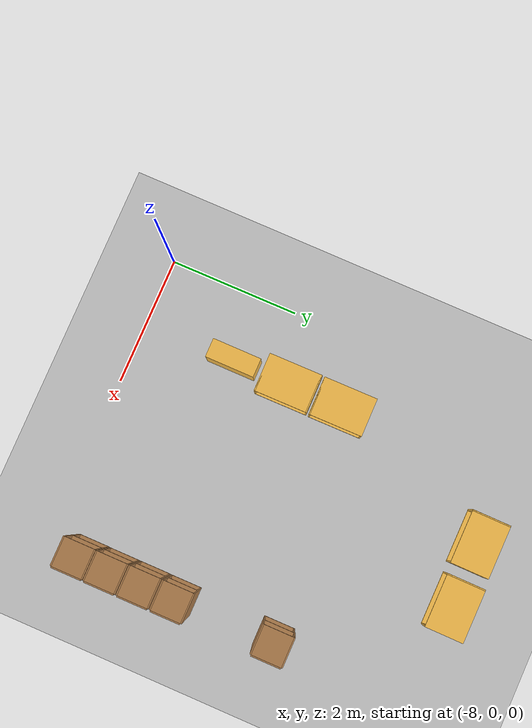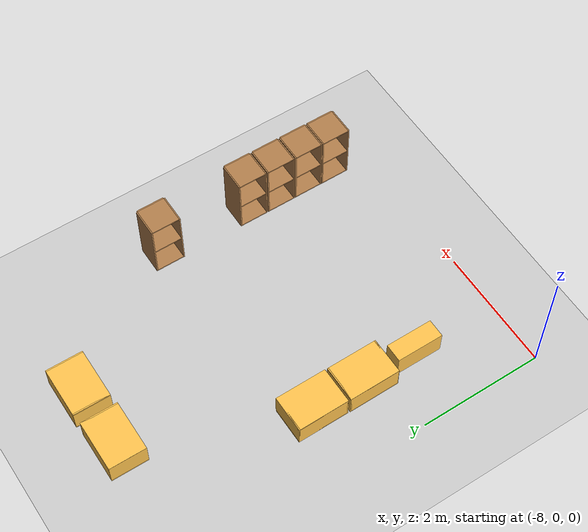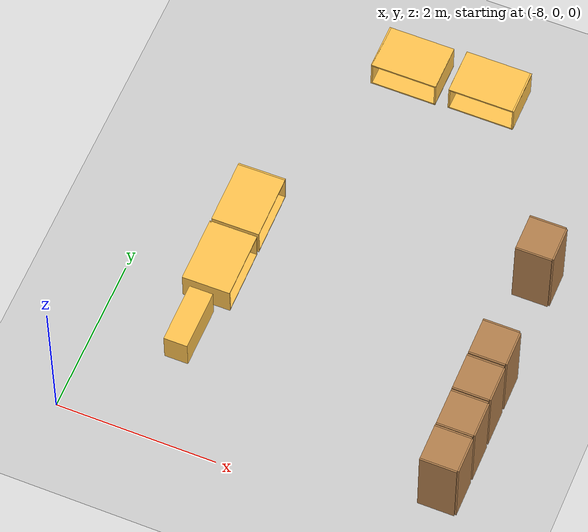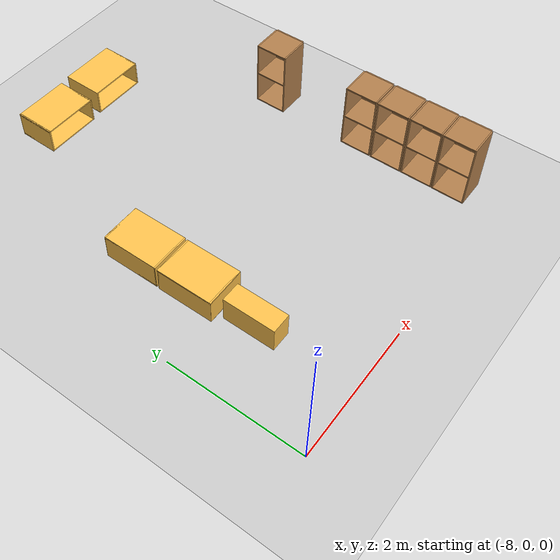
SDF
<sdf version="1.7">
 <world name="default">
  <model name="ground_plane">
   <pose>0 0 0 0 -0 1</pose>
   <static>1</static>
   <link name="link">
    <collision name="collision">
     <geometry><plane><normal>0 0 1</normal><size>100 100</size></plane></geometry>
     <surface>
      <contact><collide_bitmask>65535</collide_bitmask></contact>
      <friction><ode><mu>100</mu><mu2>50</mu2></ode></friction>
     </surface>
    </collision>
    <visual name="visual">
     <cast_shadows>0</cast_shadows>
     <geometry><plane><normal>0 0 1</normal><size>100 100</size></plane></geometry>
     <material>
      <script><uri>file://media/materials/scripts/gazebo.material</uri><name>Gazebo/Grey</name></script>
     </material>
    </visual>
   </link>
  </model>
  <model name="Box_15x30">
   <link name="Wall">
    <pose>0 0 0.1985 0 -0 0</pose>
    <inertial>
     <mass>5</mass>
     <inertia><ixx>0.3089</ixx><iyy>0.1022</iyy><izz>0.2797</izz><ixy>0</ixy><ixz>0</ixz><iyz>0</iyz></inertia>
    </inertial>
    <collision name="Wall_Collision"><geometry><box><size>0.296 0.764 0.397</size></box></geometry></collision>
    <visual name="Wall_Visual">
     <geometry><box><size>0.296 0.764 0.397</size></box></geometry>
     <material>
      <script><uri>file://media/materials/scripts/gazebo.material</uri><name>Gazebo/Grey</name></script>
      <ambient>1 0.764706 0.305882 1</ambient>
     </material>
    </visual>
   </link>
   <static>1</static>
   <pose>-6.95749 1.46432 0 0 -0 0</pose>
  </model>
  <model name="Fridge_Cabinet_33x15">
   <link name="Wall_17">
    <pose>0 0 0.01 0 -0 0</pose>
    <inertial>
     <mass>4.8627</mass>
     <inertia><ixx>0.146</ixx><iyy>0.4318</iyy><izz>0.2861</izz><ixy>0</ixy><ixz>0</ixz><iyz>0</iyz></inertia>
    </inertial>
    <collision name="Wall_17_Collision"><geometry><box><size>0.84 0.6 0.02</size></box></geometry></collision>
    <visual name="Wall_17_Visual">
     <geometry><box><size>0.84 0.6 0.02</size></box></geometry>
     <material>
      <script><uri>file://media/materials/scripts/gazebo.material</uri><name>Gazebo/Grey</name></script>
      <ambient>1 0.764706 0.305882 1</ambient>
     </material>
    </visual>
   </link>
   <joint name="17_21" type="fixed">
    <pose>0.42 0 0 0 -0 0</pose>
    <parent>Wall_21</parent>
    <child>Wall_17</child>
    <axis><xyz>1 0 0</xyz><limit><lower>-1e+16</lower><upper>1e+16</upper></limit></axis>
   </joint>
   <joint name="17_19" type="fixed">
    <pose>-0.42 0 0 0 -0 0</pose>
    <parent>Wall_19</parent>
    <child>Wall_17</child>
    <axis><xyz>1 0 0</xyz><limit><lower>-1e+16</lower><upper>1e+16</upper></limit></axis>
   </joint>
   <joint name="17_25" type="fixed">
    <pose>0 -0.3 0 0 -0 0</pose>
    <parent>Wall_25</parent>
    <child>Wall_17</child>
    <axis><xyz>0 1 0</xyz><limit><lower>-1e+16</lower><upper>1e+16</upper></limit></axis>
   </joint>
   <link name="Wall_19">
    <pose>-0.41 0 0.192 0 -0 0</pose>
    <inertial>
     <mass>2.223</mass>
     <inertia><ixx>0.0668</ixx><iyy>0.094</iyy><izz>0.0274</izz><ixy>0</ixy><ixz>0</ixz><iyz>0</iyz></inertia>
    </inertial>
    <collision name="Wall_19_Collision"><geometry><box><size>0.02 0.6 0.384</size></box></geometry></collision>
    <visual name="Wall_19_Visual">
     <geometry><box><size>0.02 0.6 0.384</size></box></geometry>
     <material>
      <script><uri>file://media/materials/scripts/gazebo.material</uri><name>Gazebo/Grey</name></script>
      <ambient>1 0.764706 0.305882 1</ambient>
     </material>
    </visual>
   </link>
   <link name="Wall_21">
    <pose>0.41 0 0.192 0 -0 0</pose>
    <inertial>
     <mass>2.223</mass>
     <inertia><ixx>0.0668</ixx><iyy>0.094</iyy><izz>0.0274</izz><ixy>0</ixy><ixz>0</ixz><iyz>0</iyz></inertia>
    </inertial>
    <collision name="Wall_21_Collision"><geometry><box><size>0.02 0.6 0.384</size></box></geometry></collision>
    <visual name="Wall_21_Visual">
     <geometry><box><size>0.02 0.6 0.384</size></box></geometry>
     <material>
      <script><uri>file://media/materials/scripts/gazebo.material</uri><name>Gazebo/Grey</name></script>
      <ambient>1 0.764706 0.305882 1</ambient>
     </material>
    </visual>
   </link>
   <link name="Wall_23">
    <pose>0 0 0.374 0 -0 0</pose>
    <inertial>
     <mass>4.8627</mass>
     <inertia><ixx>0.146</ixx><iyy>0.4318</iyy><izz>0.2861</izz><ixy>0</ixy><ixz>0</ixz><iyz>0</iyz></inertia>
    </inertial>
    <collision name="Wall_23_Collision"><geometry><box><size>0.84 0.6 0.02</size></box></geometry></collision>
    <visual name="Wall_23_Visual">
     <geometry><box><size>0.84 0.6 0.02</size></box></geometry>
     <material>
      <script><uri>file://media/materials/scripts/gazebo.material</uri><name>Gazebo/Grey</name></script>
      <ambient>1 0.764706 0.305882 1</ambient>
     </material>
    </visual>
   </link>
   <joint name="23_21" type="fixed">
    <pose>0.42 0 0 0 -0 0</pose>
    <parent>Wall_21</parent>
    <child>Wall_23</child>
    <axis><xyz>0 0 1</xyz><limit><lower>-1e+16</lower><upper>1e+16</upper></limit></axis>
   </joint>
   <joint name="23_19" type="fixed">
    <pose>-0.42 0 0 0 -0 0</pose>
    <parent>Wall_19</parent>
    <child>Wall_23</child>
    <axis><xyz>0 0 1</xyz><limit><lower>-1e+16</lower><upper>1e+16</upper></limit></axis>
   </joint>
   <joint name="23_25" type="fixed">
    <pose>0 -0.3 0 0 -0 0</pose>
    <parent>Wall_25</parent>
    <child>Wall_23</child>
    <axis><xyz>0 0 1</xyz><limit><lower>-1e+16</lower><upper>1e+16</upper></limit></axis>
   </joint>
   <link name="Wall_25">
    <pose>0 -0.29 0.19 0 -0 0</pose>
    <inertial>
     <mass>3.0651</mass>
     <inertia><ixx>0.037</ixx><iyy>0.1786</iyy><izz>0.2154</izz><ixy>0</ixy><ixz>0</ixz><iyz>0</iyz></inertia>
    </inertial>
    <collision name="Wall_25_Collision"><geometry><box><size>0.836 0.02 0.38</size></box></geometry></collision>
    <visual name="Wall_25_Visual">
     <geometry><box><size>0.836 0.02 0.38</size></box></geometry>
     <material>
      <script><uri>file://media/materials/scripts/gazebo.material</uri><name>Gazebo/Grey</name></script>
      <ambient>1 0.764706 0.305882 1</ambient>
     </material>
    </visual>
   </link>
   <joint name="25_21" type="fixed">
    <pose>0.42 0 0 0 -0 0</pose>
    <parent>Wall_21</parent>
    <child>Wall_25</child>
    <axis><xyz>0 1 0</xyz><limit><lower>-1e+16</lower><upper>1e+16</upper></limit></axis>
   </joint>
   <joint name="25_19" type="fixed">
    <pose>-0.42 0 0 0 -0 0</pose>
    <parent>Wall_19</parent>
    <child>Wall_25</child>
    <axis><xyz>0 1 0</xyz><limit><lower>-1e+16</lower><upper>1e+16</upper></limit></axis>
   </joint>
   <static>1</static>
   <pose>-6.9403 2.35275 0 0 0 -1.56459</pose>
  </model>
  <model name="Fridge_Cabinet_33x15_clone">
   <link name="Wall_17">
    <pose>0 0 0.01 0 -0 0</pose>
    <inertial>
     <mass>4.8627</mass>
     <inertia><ixx>0.146</ixx><iyy>0.4318</iyy><izz>0.2861</izz><ixy>0</ixy><ixz>0</ixz><iyz>0</iyz></inertia>
    </inertial>
    <collision name="Wall_17_Collision"><geometry><box><size>0.84 0.6 0.02</size></box></geometry></collision>
    <visual name="Wall_17_Visual">
     <geometry><box><size>0.84 0.6 0.02</size></box></geometry>
     <material>
      <script><uri>file://media/materials/scripts/gazebo.material</uri><name>Gazebo/Grey</name></script>
      <ambient>1 0.764706 0.305882 1</ambient>
     </material>
    </visual>
   </link>
   <joint name="17_21" type="fixed">
    <pose>0.42 0 0 0 -0 0</pose>
    <parent>Wall_21</parent>
    <child>Wall_17</child>
    <axis><xyz>1 0 0</xyz><limit><lower>-1e+16</lower><upper>1e+16</upper></limit></axis>
   </joint>
   <joint name="17_19" type="fixed">
    <pose>-0.42 0 0 0 -0 0</pose>
    <parent>Wall_19</parent>
    <child>Wall_17</child>
    <axis><xyz>1 0 0</xyz><limit><lower>-1e+16</lower><upper>1e+16</upper></limit></axis>
   </joint>
   <joint name="17_25" type="fixed">
    <pose>0 -0.3 0 0 -0 0</pose>
    <parent>Wall_25</parent>
    <child>Wall_17</child>
    <axis><xyz>0 1 0</xyz><limit><lower>-1e+16</lower><upper>1e+16</upper></limit></axis>
   </joint>
   <link name="Wall_19">
    <pose>-0.41 0 0.192 0 -0 0</pose>
    <inertial>
     <mass>2.223</mass>
     <inertia><ixx>0.0668</ixx><iyy>0.094</iyy><izz>0.0274</izz><ixy>0</ixy><ixz>0</ixz><iyz>0</iyz></inertia>
    </inertial>
    <collision name="Wall_19_Collision"><geometry><box><size>0.02 0.6 0.384</size></box></geometry></collision>
    <visual name="Wall_19_Visual">
     <geometry><box><size>0.02 0.6 0.384</size></box></geometry>
     <material>
      <script><uri>file://media/materials/scripts/gazebo.material</uri><name>Gazebo/Grey</name></script>
      <ambient>1 0.764706 0.305882 1</ambient>
     </material>
    </visual>
   </link>
   <link name="Wall_21">
    <pose>0.41 0 0.192 0 -0 0</pose>
    <inertial>
     <mass>2.223</mass>
     <inertia><ixx>0.0668</ixx><iyy>0.094</iyy><izz>0.0274</izz><ixy>0</ixy><ixz>0</ixz><iyz>0</iyz></inertia>
    </inertial>
    <collision name="Wall_21_Collision"><geometry><box><size>0.02 0.6 0.384</size></box></geometry></collision>
    <visual name="Wall_21_Visual">
     <geometry><box><size>0.02 0.6 0.384</size></box></geometry>
     <material>
      <script><uri>file://media/materials/scripts/gazebo.material</uri><name>Gazebo/Grey</name></script>
      <ambient>1 0.764706 0.305882 1</ambient>
     </material>
    </visual>
   </link>
   <link name="Wall_23">
    <pose>0 0 0.374 0 -0 0</pose>
    <inertial>
     <mass>4.8627</mass>
     <inertia><ixx>0.146</ixx><iyy>0.4318</iyy><izz>0.2861</izz><ixy>0</ixy><ixz>0</ixz><iyz>0</iyz></inertia>
    </inertial>
    <collision name="Wall_23_Collision"><geometry><box><size>0.84 0.6 0.02</size></box></geometry></collision>
    <visual name="Wall_23_Visual">
     <geometry><box><size>0.84 0.6 0.02</size></box></geometry>
     <material>
      <script><uri>file://media/materials/scripts/gazebo.material</uri><name>Gazebo/Grey</name></script>
      <ambient>1 0.764706 0.305882 1</ambient>
     </material>
    </visual>
   </link>
   <joint name="23_21" type="fixed">
    <pose>0.42 0 0 0 -0 0</pose>
    <parent>Wall_21</parent>
    <child>Wall_23</child>
    <axis><xyz>0 0 1</xyz><limit><lower>-1e+16</lower><upper>1e+16</upper></limit></axis>
   </joint>
   <joint name="23_19" type="fixed">
    <pose>-0.42 0 0 0 -0 0</pose>
    <parent>Wall_19</parent>
    <child>Wall_23</child>
    <axis><xyz>0 0 1</xyz><limit><lower>-1e+16</lower><upper>1e+16</upper></limit></axis>
   </joint>
   <joint name="23_25" type="fixed">
    <pose>0 -0.3 0 0 -0 0</pose>
    <parent>Wall_25</parent>
    <child>Wall_23</child>
    <axis><xyz>0 0 1</xyz><limit><lower>-1e+16</lower><upper>1e+16</upper></limit></axis>
   </joint>
   <link name="Wall_25">
    <pose>0 -0.29 0.19 0 -0 0</pose>
    <inertial>
     <mass>3.0651</mass>
     <inertia><ixx>0.037</ixx><iyy>0.1786</iyy><izz>0.2154</izz><ixy>0</ixy><ixz>0</ixz><iyz>0</iyz></inertia>
    </inertial>
    <collision name="Wall_25_Collision"><geometry><box><size>0.836 0.02 0.38</size></box></geometry></collision>
    <visual name="Wall_25_Visual">
     <geometry><box><size>0.836 0.02 0.38</size></box></geometry>
     <material>
      <script><uri>file://media/materials/scripts/gazebo.material</uri><name>Gazebo/Grey</name></script>
      <ambient>1 0.764706 0.305882 1</ambient>
     </material>
    </visual>
   </link>
   <joint name="25_21" type="fixed">
    <pose>0.42 0 0 0 -0 0</pose>
    <parent>Wall_21</parent>
    <child>Wall_25</child>
    <axis><xyz>0 1 0</xyz><limit><lower>-1e+16</lower><upper>1e+16</upper></limit></axis>
   </joint>
   <joint name="25_19" type="fixed">
    <pose>-0.42 0 0 0 -0 0</pose>
    <parent>Wall_19</parent>
    <child>Wall_25</child>
    <axis><xyz>0 1 0</xyz><limit><lower>-1e+16</lower><upper>1e+16</upper></limit></axis>
   </joint>
   <static>1</static>
   <pose>-6.93987 3.22696 0 0 0 -1.56459</pose>
  </model>
  <model name="Fridge_Cabinet_33x15_clone_0">
   <link name="Wall_17">
    <pose>0 0 0.01 0 -0 0</pose>
    <inertial>
     <mass>4.8627</mass>
     <inertia><ixx>0.146</ixx><iyy>0.4318</iyy><izz>0.2861</izz><ixy>0</ixy><ixz>0</ixz><iyz>0</iyz></inertia>
    </inertial>
    <collision name="Wall_17_Collision"><geometry><box><size>0.84 0.6 0.02</size></box></geometry></collision>
    <visual name="Wall_17_Visual">
     <geometry><box><size>0.84 0.6 0.02</size></box></geometry>
     <material>
      <script><uri>file://media/materials/scripts/gazebo.material</uri><name>Gazebo/Grey</name></script>
      <ambient>1 0.764706 0.305882 1</ambient>
     </material>
    </visual>
   </link>
   <joint name="17_21" type="fixed">
    <pose>0.42 0 0 0 -0 0</pose>
    <parent>Wall_21</parent>
    <child>Wall_17</child>
    <axis><xyz>1 0 0</xyz><limit><lower>-1e+16</lower><upper>1e+16</upper></limit></axis>
   </joint>
   <joint name="17_19" type="fixed">
    <pose>-0.42 0 0 0 -0 0</pose>
    <parent>Wall_19</parent>
    <child>Wall_17</child>
    <axis><xyz>1 0 0</xyz><limit><lower>-1e+16</lower><upper>1e+16</upper></limit></axis>
   </joint>
   <joint name="17_25" type="fixed">
    <pose>0 -0.3 0 0 -0 0</pose>
    <parent>Wall_25</parent>
    <child>Wall_17</child>
    <axis><xyz>0 1 0</xyz><limit><lower>-1e+16</lower><upper>1e+16</upper></limit></axis>
   </joint>
   <link name="Wall_19">
    <pose>-0.41 0 0.192 0 -0 0</pose>
    <inertial>
     <mass>2.223</mass>
     <inertia><ixx>0.0668</ixx><iyy>0.094</iyy><izz>0.0274</izz><ixy>0</ixy><ixz>0</ixz><iyz>0</iyz></inertia>
    </inertial>
    <collision name="Wall_19_Collision"><geometry><box><size>0.02 0.6 0.384</size></box></geometry></collision>
    <visual name="Wall_19_Visual">
     <geometry><box><size>0.02 0.6 0.384</size></box></geometry>
     <material>
      <script><uri>file://media/materials/scripts/gazebo.material</uri><name>Gazebo/Grey</name></script>
      <ambient>1 0.764706 0.305882 1</ambient>
     </material>
    </visual>
   </link>
   <link name="Wall_21">
    <pose>0.41 0 0.192 0 -0 0</pose>
    <inertial>
     <mass>2.223</mass>
     <inertia><ixx>0.0668</ixx><iyy>0.094</iyy><izz>0.0274</izz><ixy>0</ixy><ixz>0</ixz><iyz>0</iyz></inertia>
    </inertial>
    <collision name="Wall_21_Collision"><geometry><box><size>0.02 0.6 0.384</size></box></geometry></collision>
    <visual name="Wall_21_Visual">
     <geometry><box><size>0.02 0.6 0.384</size></box></geometry>
     <material>
      <script><uri>file://media/materials/scripts/gazebo.material</uri><name>Gazebo/Grey</name></script>
      <ambient>1 0.764706 0.305882 1</ambient>
     </material>
    </visual>
   </link>
   <link name="Wall_23">
    <pose>0 0 0.374 0 -0 0</pose>
    <inertial>
     <mass>4.8627</mass>
     <inertia><ixx>0.146</ixx><iyy>0.4318</iyy><izz>0.2861</izz><ixy>0</ixy><ixz>0</ixz><iyz>0</iyz></inertia>
    </inertial>
    <collision name="Wall_23_Collision"><geometry><box><size>0.84 0.6 0.02</size></box></geometry></collision>
    <visual name="Wall_23_Visual">
     <geometry><box><size>0.84 0.6 0.02</size></box></geometry>
     <material>
      <script><uri>file://media/materials/scripts/gazebo.material</uri><name>Gazebo/Grey</name></script>
      <ambient>1 0.764706 0.305882 1</ambient>
     </material>
    </visual>
   </link>
   <joint name="23_21" type="fixed">
    <pose>0.42 0 0 0 -0 0</pose>
    <parent>Wall_21</parent>
    <child>Wall_23</child>
    <axis><xyz>0 0 1</xyz><limit><lower>-1e+16</lower><upper>1e+16</upper></limit></axis>
   </joint>
   <joint name="23_19" type="fixed">
    <pose>-0.42 0 0 0 -0 0</pose>
    <parent>Wall_19</parent>
    <child>Wall_23</child>
    <axis><xyz>0 0 1</xyz><limit><lower>-1e+16</lower><upper>1e+16</upper></limit></axis>
   </joint>
   <joint name="23_25" type="fixed">
    <pose>0 -0.3 0 0 -0 0</pose>
    <parent>Wall_25</parent>
    <child>Wall_23</child>
    <axis><xyz>0 0 1</xyz><limit><lower>-1e+16</lower><upper>1e+16</upper></limit></axis>
   </joint>
   <link name="Wall_25">
    <pose>0 -0.29 0.19 0 -0 0</pose>
    <inertial>
     <mass>3.0651</mass>
     <inertia><ixx>0.037</ixx><iyy>0.1786</iyy><izz>0.2154</izz><ixy>0</ixy><ixz>0</ixz><iyz>0</iyz></inertia>
    </inertial>
    <collision name="Wall_25_Collision"><geometry><box><size>0.836 0.02 0.38</size></box></geometry></collision>
    <visual name="Wall_25_Visual">
     <geometry><box><size>0.836 0.02 0.38</size></box></geometry>
     <material>
      <script><uri>file://media/materials/scripts/gazebo.material</uri><name>Gazebo/Grey</name></script>
      <ambient>1 0.764706 0.305882 1</ambient>
     </material>
    </visual>
   </link>
   <joint name="25_21" type="fixed">
    <pose>0.42 0 0 0 -0 0</pose>
    <parent>Wall_21</parent>
    <child>Wall_25</child>
    <axis><xyz>0 1 0</xyz><limit><lower>-1e+16</lower><upper>1e+16</upper></limit></axis>
   </joint>
   <joint name="25_19" type="fixed">
    <pose>-0.42 0 0 0 -0 0</pose>
    <parent>Wall_19</parent>
    <child>Wall_25</child>
    <axis><xyz>0 1 0</xyz><limit><lower>-1e+16</lower><upper>1e+16</upper></limit></axis>
   </joint>
   <static>1</static>
   <pose>-5.89354 5.84821 -0.002918 0 -0 3.13541</pose>
  </model>
  <model name="Fridge_Cabinet_33x15_clone_0_clone">
   <link name="Wall_17">
    <pose>0 0 0.01 0 -0 0</pose>
    <inertial>
     <mass>4.8627</mass>
     <inertia><ixx>0.146</ixx><iyy>0.4318</iyy><izz>0.2861</izz><ixy>0</ixy><ixz>0</ixz><iyz>0</iyz></inertia>
    </inertial>
    <collision name="Wall_17_Collision"><geometry><box><size>0.84 0.6 0.02</size></box></geometry></collision>
    <visual name="Wall_17_Visual">
     <geometry><box><size>0.84 0.6 0.02</size></box></geometry>
     <material>
      <script><uri>file://media/materials/scripts/gazebo.material</uri><name>Gazebo/Grey</name></script>
      <ambient>1 0.764706 0.305882 1</ambient>
     </material>
    </visual>
   </link>
   <joint name="17_21" type="fixed">
    <pose>0.42 0 0 0 -0 0</pose>
    <parent>Wall_21</parent>
    <child>Wall_17</child>
    <axis><xyz>1 0 0</xyz><limit><lower>-1e+16</lower><upper>1e+16</upper></limit></axis>
   </joint>
   <joint name="17_19" type="fixed">
    <pose>-0.42 0 0 0 -0 0</pose>
    <parent>Wall_19</parent>
    <child>Wall_17</child>
    <axis><xyz>1 0 0</xyz><limit><lower>-1e+16</lower><upper>1e+16</upper></limit></axis>
   </joint>
   <joint name="17_25" type="fixed">
    <pose>0 -0.3 0 0 -0 0</pose>
    <parent>Wall_25</parent>
    <child>Wall_17</child>
    <axis><xyz>0 1 0</xyz><limit><lower>-1e+16</lower><upper>1e+16</upper></limit></axis>
   </joint>
   <link name="Wall_19">
    <pose>-0.41 0 0.192 0 -0 0</pose>
    <inertial>
     <mass>2.223</mass>
     <inertia><ixx>0.0668</ixx><iyy>0.094</iyy><izz>0.0274</izz><ixy>0</ixy><ixz>0</ixz><iyz>0</iyz></inertia>
    </inertial>
    <collision name="Wall_19_Collision"><geometry><box><size>0.02 0.6 0.384</size></box></geometry></collision>
    <visual name="Wall_19_Visual">
     <geometry><box><size>0.02 0.6 0.384</size></box></geometry>
     <material>
      <script><uri>file://media/materials/scripts/gazebo.material</uri><name>Gazebo/Grey</name></script>
      <ambient>1 0.764706 0.305882 1</ambient>
     </material>
    </visual>
   </link>
   <link name="Wall_21">
    <pose>0.41 0 0.192 0 -0 0</pose>
    <inertial>
     <mass>2.223</mass>
     <inertia><ixx>0.0668</ixx><iyy>0.094</iyy><izz>0.0274</izz><ixy>0</ixy><ixz>0</ixz><iyz>0</iyz></inertia>
    </inertial>
    <collision name="Wall_21_Collision"><geometry><box><size>0.02 0.6 0.384</size></box></geometry></collision>
    <visual name="Wall_21_Visual">
     <geometry><box><size>0.02 0.6 0.384</size></box></geometry>
     <material>
      <script><uri>file://media/materials/scripts/gazebo.material</uri><name>Gazebo/Grey</name></script>
      <ambient>1 0.764706 0.305882 1</ambient>
     </material>
    </visual>
   </link>
   <link name="Wall_23">
    <pose>0 0 0.374 0 -0 0</pose>
    <inertial>
     <mass>4.8627</mass>
     <inertia><ixx>0.146</ixx><iyy>0.4318</iyy><izz>0.2861</izz><ixy>0</ixy><ixz>0</ixz><iyz>0</iyz></inertia>
    </inertial>
    <collision name="Wall_23_Collision"><geometry><box><size>0.84 0.6 0.02</size></box></geometry></collision>
    <visual name="Wall_23_Visual">
     <geometry><box><size>0.84 0.6 0.02</size></box></geometry>
     <material>
      <script><uri>file://media/materials/scripts/gazebo.material</uri><name>Gazebo/Grey</name></script>
      <ambient>1 0.764706 0.305882 1</ambient>
     </material>
    </visual>
   </link>
   <joint name="23_21" type="fixed">
    <pose>0.42 0 0 0 -0 0</pose>
    <parent>Wall_21</parent>
    <child>Wall_23</child>
    <axis><xyz>0 0 1</xyz><limit><lower>-1e+16</lower><upper>1e+16</upper></limit></axis>
   </joint>
   <joint name="23_19" type="fixed">
    <pose>-0.42 0 0 0 -0 0</pose>
    <parent>Wall_19</parent>
    <child>Wall_23</child>
    <axis><xyz>0 0 1</xyz><limit><lower>-1e+16</lower><upper>1e+16</upper></limit></axis>
   </joint>
   <joint name="23_25" type="fixed">
    <pose>0 -0.3 0 0 -0 0</pose>
    <parent>Wall_25</parent>
    <child>Wall_23</child>
    <axis><xyz>0 0 1</xyz><limit><lower>-1e+16</lower><upper>1e+16</upper></limit></axis>
   </joint>
   <link name="Wall_25">
    <pose>0 -0.29 0.19 0 -0 0</pose>
    <inertial>
     <mass>3.0651</mass>
     <inertia><ixx>0.037</ixx><iyy>0.1786</iyy><izz>0.2154</izz><ixy>0</ixy><ixz>0</ixz><iyz>0</iyz></inertia>
    </inertial>
    <collision name="Wall_25_Collision"><geometry><box><size>0.836 0.02 0.38</size></box></geometry></collision>
    <visual name="Wall_25_Visual">
     <geometry><box><size>0.836 0.02 0.38</size></box></geometry>
     <material>
      <script><uri>file://media/materials/scripts/gazebo.material</uri><name>Gazebo/Grey</name></script>
      <ambient>1 0.764706 0.305882 1</ambient>
     </material>
    </visual>
   </link>
   <joint name="25_21" type="fixed">
    <pose>0.42 0 0 0 -0 0</pose>
    <parent>Wall_21</parent>
    <child>Wall_25</child>
    <axis><xyz>0 1 0</xyz><limit><lower>-1e+16</lower><upper>1e+16</upper></limit></axis>
   </joint>
   <joint name="25_19" type="fixed">
    <pose>-0.42 0 0 0 -0 0</pose>
    <parent>Wall_19</parent>
    <child>Wall_25</child>
    <axis><xyz>0 1 0</xyz><limit><lower>-1e+16</lower><upper>1e+16</upper></limit></axis>
   </joint>
   <static>1</static>
   <pose>-4.899 5.86598 -0 0 -0 3.13541</pose>
  </model>
  <model name="cabinet">
   <static>1</static>
   <link name="cabinet_bottom_plate">
    <inertial>
     <pose>0 0 -1 0 -0 0</pose>
     <inertia><ixx>2.05</ixx><ixy>0</ixy><ixz>0</ixz><iyy>2.05</iyy><iyz>0</iyz><izz>2.05</izz></inertia>
     <mass>25</mass>
    </inertial>
    <collision name="cabinet_bottom_plate_geom">
     <pose>0 0 0.01 0 -0 0</pose>
     <geometry><box><size>0.45 0.45 0.02</size></box></geometry>
    </collision>
    <visual name="cabinet_bottom_plate_geom_visual">
     <pose>0 0 0.01 0 -0 0</pose>
     <geometry><box><size>0.45 0.45 0.02</size></box></geometry>
     <material>
      <script><uri>file://media/materials/scripts/gazebo.material</uri><name>Gazebo/Wood</name></script>
     </material>
    </visual>
    <collision name="cabinet_bottom_plate_geom_cabinet_back_plate">
     <pose>0.235 0 0.51 0 -0 0</pose>
     <geometry><box><size>0.02 0.45 1.02</size></box></geometry>
    </collision>
    <visual name="cabinet_bottom_plate_geom_cabinet_back_plate_visual">
     <pose>0.235 0 0.51 0 -0 0</pose>
     <geometry><box><size>0.02 0.45 1.02</size></box></geometry>
     <material>
      <script><uri>file://media/materials/scripts/gazebo.material</uri><name>Gazebo/Wood</name></script>
     </material>
    </visual>
    <collision name="cabinet_bottom_plate_geom_cabinet_left_plate">
     <pose>0 0.235 0.51 0 -0 0</pose>
     <geometry><box><size>0.45 0.02 1.02</size></box></geometry>
    </collision>
    <visual name="cabinet_bottom_plate_geom_cabinet_left_plate_visual">
     <pose>0 0.235 0.51 0 -0 0</pose>
     <geometry><box><size>0.45 0.02 1.02</size></box></geometry>
     <material>
      <script><uri>file://media/materials/scripts/gazebo.material</uri><name>Gazebo/Wood</name></script>
     </material>
    </visual>
    <collision name="cabinet_bottom_plate_geom_cabinet_middle_plate">
     <pose>0 0 0.51 0 -0 0</pose>
     <geometry><box><size>0.45 0.45 0.02</size></box></geometry>
    </collision>
    <visual name="cabinet_bottom_plate_geom_cabinet_middle_plate_visual">
     <pose>0 0 0.51 0 -0 0</pose>
     <geometry><box><size>0.45 0.45 0.02</size></box></geometry>
     <material>
      <script><uri>file://media/materials/scripts/gazebo.material</uri><name>Gazebo/Wood</name></script>
     </material>
    </visual>
    <collision name="cabinet_bottom_plate_geom_cabinet_right_plate">
     <pose>0 -0.235 0.51 0 -0 0</pose>
     <geometry><box><size>0.45 0.02 1.02</size></box></geometry>
    </collision>
    <visual name="cabinet_bottom_plate_geom_cabinet_right_plate_visual">
     <pose>0 -0.235 0.51 0 -0 0</pose>
     <geometry><box><size>0.45 0.02 1.02</size></box></geometry>
     <material>
      <script><uri>file://media/materials/scripts/gazebo.material</uri><name>Gazebo/Wood</name></script>
     </material>
    </visual>
    <collision name="cabinet_bottom_plate_geom_cabinet_top_plate">
     <pose>0 0 1.01 0 -0 0</pose>
     <geometry><box><size>0.45 0.45 0.02</size></box></geometry>
    </collision>
    <visual name="cabinet_bottom_plate_geom_cabinet_top_plate_visual">
     <pose>0 0 1.01 0 -0 0</pose>
     <geometry><box><size>0.45 0.45 0.02</size></box></geometry>
     <material>
      <script><uri>file://media/materials/scripts/gazebo.material</uri><name>Gazebo/Wood</name></script>
     </material>
    </visual>
   </link>
   <pose>-3.44327 3.63904 0 0 -0 0</pose>
  </model>
  <model name="cabinet_clone_1">
   <static>1</static>
   <link name="cabinet_bottom_plate">
    <inertial>
     <pose>0 0 -1 0 -0 0</pose>
     <inertia><ixx>2.05</ixx><ixy>0</ixy><ixz>0</ixz><iyy>2.05</iyy><iyz>0</iyz><izz>2.05</izz></inertia>
     <mass>25</mass>
    </inertial>
    <collision name="cabinet_bottom_plate_geom">
     <pose>0 0 0.01 0 -0 0</pose>
     <geometry><box><size>0.45 0.45 0.02</size></box></geometry>
    </collision>
    <visual name="cabinet_bottom_plate_geom_visual">
     <pose>0 0 0.01 0 -0 0</pose>
     <geometry><box><size>0.45 0.45 0.02</size></box></geometry>
     <material>
      <script><uri>file://media/materials/scripts/gazebo.material</uri><name>Gazebo/Wood</name></script>
     </material>
    </visual>
    <collision name="cabinet_bottom_plate_geom_cabinet_back_plate">
     <pose>0.235 0 0.51 0 -0 0</pose>
     <geometry><box><size>0.02 0.45 1.02</size></box></geometry>
    </collision>
    <visual name="cabinet_bottom_plate_geom_cabinet_back_plate_visual">
     <pose>0.235 0 0.51 0 -0 0</pose>
     <geometry><box><size>0.02 0.45 1.02</size></box></geometry>
     <material>
      <script><uri>file://media/materials/scripts/gazebo.material</uri><name>Gazebo/Wood</name></script>
     </material>
    </visual>
    <collision name="cabinet_bottom_plate_geom_cabinet_left_plate">
     <pose>0 0.235 0.51 0 -0 0</pose>
     <geometry><box><size>0.45 0.02 1.02</size></box></geometry>
    </collision>
    <visual name="cabinet_bottom_plate_geom_cabinet_left_plate_visual">
     <pose>0 0.235 0.51 0 -0 0</pose>
     <geometry><box><size>0.45 0.02 1.02</size></box></geometry>
     <material>
      <script><uri>file://media/materials/scripts/gazebo.material</uri><name>Gazebo/Wood</name></script>
     </material>
    </visual>
    <collision name="cabinet_bottom_plate_geom_cabinet_middle_plate">
     <pose>0 0 0.51 0 -0 0</pose>
     <geometry><box><size>0.45 0.45 0.02</size></box></geometry>
    </collision>
    <visual name="cabinet_bottom_plate_geom_cabinet_middle_plate_visual">
     <pose>0 0 0.51 0 -0 0</pose>
     <geometry><box><size>0.45 0.45 0.02</size></box></geometry>
     <material>
      <script><uri>file://media/materials/scripts/gazebo.material</uri><name>Gazebo/Wood</name></script>
     </material>
    </visual>
    <collision name="cabinet_bottom_plate_geom_cabinet_right_plate">
     <pose>0 -0.235 0.51 0 -0 0</pose>
     <geometry><box><size>0.45 0.02 1.02</size></box></geometry>
    </collision>
    <visual name="cabinet_bottom_plate_geom_cabinet_right_plate_visual">
     <pose>0 -0.235 0.51 0 -0 0</pose>
     <geometry><box><size>0.45 0.02 1.02</size></box></geometry>
     <material>
      <script><uri>file://media/materials/scripts/gazebo.material</uri><name>Gazebo/Wood</name></script>
     </material>
    </visual>
    <collision name="cabinet_bottom_plate_geom_cabinet_top_plate">
     <pose>0 0 1.01 0 -0 0</pose>
     <geometry><box><size>0.45 0.45 0.02</size></box></geometry>
    </collision>
    <visual name="cabinet_bottom_plate_geom_cabinet_top_plate_visual">
     <pose>0 0 1.01 0 -0 0</pose>
     <geometry><box><size>0.45 0.45 0.02</size></box></geometry>
     <material>
      <script><uri>file://media/materials/scripts/gazebo.material</uri><name>Gazebo/Wood</name></script>
     </material>
    </visual>
   </link>
   <pose>-3.4425 2.13165 0 0 -0 0</pose>
  </model>
  <model name="cabinet_clone_2">
   <static>1</static>
   <link name="cabinet_bottom_plate">
    <inertial>
     <pose>0 0 -1 0 -0 0</pose>
     <inertia><ixx>2.05</ixx><ixy>0</ixy><ixz>0</ixz><iyy>2.05</iyy><iyz>0</iyz><izz>2.05</izz></inertia>
     <mass>25</mass>
    </inertial>
    <collision name="cabinet_bottom_plate_geom">
     <pose>0 0 0.01 0 -0 0</pose>
     <geometry><box><size>0.45 0.45 0.02</size></box></geometry>
    </collision>
    <visual name="cabinet_bottom_plate_geom_visual">
     <pose>0 0 0.01 0 -0 0</pose>
     <geometry><box><size>0.45 0.45 0.02</size></box></geometry>
     <material>
      <script><uri>file://media/materials/scripts/gazebo.material</uri><name>Gazebo/Wood</name></script>
     </material>
    </visual>
    <collision name="cabinet_bottom_plate_geom_cabinet_back_plate">
     <pose>0.235 0 0.51 0 -0 0</pose>
     <geometry><box><size>0.02 0.45 1.02</size></box></geometry>
    </collision>
    <visual name="cabinet_bottom_plate_geom_cabinet_back_plate_visual">
     <pose>0.235 0 0.51 0 -0 0</pose>
     <geometry><box><size>0.02 0.45 1.02</size></box></geometry>
     <material>
      <script><uri>file://media/materials/scripts/gazebo.material</uri><name>Gazebo/Wood</name></script>
     </material>
    </visual>
    <collision name="cabinet_bottom_plate_geom_cabinet_left_plate">
     <pose>0 0.235 0.51 0 -0 0</pose>
     <geometry><box><size>0.45 0.02 1.02</size></box></geometry>
    </collision>
    <visual name="cabinet_bottom_plate_geom_cabinet_left_plate_visual">
     <pose>0 0.235 0.51 0 -0 0</pose>
     <geometry><box><size>0.45 0.02 1.02</size></box></geometry>
     <material>
      <script><uri>file://media/materials/scripts/gazebo.material</uri><name>Gazebo/Wood</name></script>
     </material>
    </visual>
    <collision name="cabinet_bottom_plate_geom_cabinet_middle_plate">
     <pose>0 0 0.51 0 -0 0</pose>
     <geometry><box><size>0.45 0.45 0.02</size></box></geometry>
    </collision>
    <visual name="cabinet_bottom_plate_geom_cabinet_middle_plate_visual">
     <pose>0 0 0.51 0 -0 0</pose>
     <geometry><box><size>0.45 0.45 0.02</size></box></geometry>
     <material>
      <script><uri>file://media/materials/scripts/gazebo.material</uri><name>Gazebo/Wood</name></script>
     </material>
    </visual>
    <collision name="cabinet_bottom_plate_geom_cabinet_right_plate">
     <pose>0 -0.235 0.51 0 -0 0</pose>
     <geometry><box><size>0.45 0.02 1.02</size></box></geometry>
    </collision>
    <visual name="cabinet_bottom_plate_geom_cabinet_right_plate_visual">
     <pose>0 -0.235 0.51 0 -0 0</pose>
     <geometry><box><size>0.45 0.02 1.02</size></box></geometry>
     <material>
      <script><uri>file://media/materials/scripts/gazebo.material</uri><name>Gazebo/Wood</name></script>
     </material>
    </visual>
    <collision name="cabinet_bottom_plate_geom_cabinet_top_plate">
     <pose>0 0 1.01 0 -0 0</pose>
     <geometry><box><size>0.45 0.45 0.02</size></box></geometry>
    </collision>
    <visual name="cabinet_bottom_plate_geom_cabinet_top_plate_visual">
     <pose>0 0 1.01 0 -0 0</pose>
     <geometry><box><size>0.45 0.45 0.02</size></box></geometry>
     <material>
      <script><uri>file://media/materials/scripts/gazebo.material</uri><name>Gazebo/Wood</name></script>
     </material>
    </visual>
   </link>
   <pose>-3.44429 1.62966 0 0 -0 0</pose>
  </model>
  <model name="cabinet_clone_3">
   <static>1</static>
   <link name="cabinet_bottom_plate">
    <inertial>
     <pose>0 0 -1 0 -0 0</pose>
     <inertia><ixx>2.05</ixx><ixy>0</ixy><ixz>0</ixz><iyy>2.05</iyy><iyz>0</iyz><izz>2.05</izz></inertia>
     <mass>25</mass>
    </inertial>
    <collision name="cabinet_bottom_plate_geom">
     <pose>0 0 0.01 0 -0 0</pose>
     <geometry><box><size>0.45 0.45 0.02</size></box></geometry>
    </collision>
    <visual name="cabinet_bottom_plate_geom_visual">
     <pose>0 0 0.01 0 -0 0</pose>
     <geometry><box><size>0.45 0.45 0.02</size></box></geometry>
     <material>
      <script><uri>file://media/materials/scripts/gazebo.material</uri><name>Gazebo/Wood</name></script>
     </material>
    </visual>
    <collision name="cabinet_bottom_plate_geom_cabinet_back_plate">
     <pose>0.235 0 0.51 0 -0 0</pose>
     <geometry><box><size>0.02 0.45 1.02</size></box></geometry>
    </collision>
    <visual name="cabinet_bottom_plate_geom_cabinet_back_plate_visual">
     <pose>0.235 0 0.51 0 -0 0</pose>
     <geometry><box><size>0.02 0.45 1.02</size></box></geometry>
     <material>
      <script><uri>file://media/materials/scripts/gazebo.material</uri><name>Gazebo/Wood</name></script>
     </material>
    </visual>
    <collision name="cabinet_bottom_plate_geom_cabinet_left_plate">
     <pose>0 0.235 0.51 0 -0 0</pose>
     <geometry><box><size>0.45 0.02 1.02</size></box></geometry>
    </collision>
    <visual name="cabinet_bottom_plate_geom_cabinet_left_plate_visual">
     <pose>0 0.235 0.51 0 -0 0</pose>
     <geometry><box><size>0.45 0.02 1.02</size></box></geometry>
     <material>
      <script><uri>file://media/materials/scripts/gazebo.material</uri><name>Gazebo/Wood</name></script>
     </material>
    </visual>
    <collision name="cabinet_bottom_plate_geom_cabinet_middle_plate">
     <pose>0 0 0.51 0 -0 0</pose>
     <geometry><box><size>0.45 0.45 0.02</size></box></geometry>
    </collision>
    <visual name="cabinet_bottom_plate_geom_cabinet_middle_plate_visual">
     <pose>0 0 0.51 0 -0 0</pose>
     <geometry><box><size>0.45 0.45 0.02</size></box></geometry>
     <material>
      <script><uri>file://media/materials/scripts/gazebo.material</uri><name>Gazebo/Wood</name></script>
     </material>
    </visual>
    <collision name="cabinet_bottom_plate_geom_cabinet_right_plate">
     <pose>0 -0.235 0.51 0 -0 0</pose>
     <geometry><box><size>0.45 0.02 1.02</size></box></geometry>
    </collision>
    <visual name="cabinet_bottom_plate_geom_cabinet_right_plate_visual">
     <pose>0 -0.235 0.51 0 -0 0</pose>
     <geometry><box><size>0.45 0.02 1.02</size></box></geometry>
     <material>
      <script><uri>file://media/materials/scripts/gazebo.material</uri><name>Gazebo/Wood</name></script>
     </material>
    </visual>
    <collision name="cabinet_bottom_plate_geom_cabinet_top_plate">
     <pose>0 0 1.01 0 -0 0</pose>
     <geometry><box><size>0.45 0.45 0.02</size></box></geometry>
    </collision>
    <visual name="cabinet_bottom_plate_geom_cabinet_top_plate_visual">
     <pose>0 0 1.01 0 -0 0</pose>
     <geometry><box><size>0.45 0.45 0.02</size></box></geometry>
     <material>
      <script><uri>file://media/materials/scripts/gazebo.material</uri><name>Gazebo/Wood</name></script>
     </material>
    </visual>
   </link>
   <pose>-3.44418 1.13007 0 0 -0 0</pose>
  </model>
  <model name="cabinet_clone_4">
   <static>1</static>
   <link name="cabinet_bottom_plate">
    <inertial>
     <pose>0 0 -1 0 -0 0</pose>
     <inertia><ixx>2.05</ixx><ixy>0</ixy><ixz>0</ixz><iyy>2.05</iyy><iyz>0</iyz><izz>2.05</izz></inertia>
     <mass>25</mass>
    </inertial>
    <collision name="cabinet_bottom_plate_geom">
     <pose>0 0 0.01 0 -0 0</pose>
     <geometry><box><size>0.45 0.45 0.02</size></box></geometry>
    </collision>
    <visual name="cabinet_bottom_plate_geom_visual">
     <pose>0 0 0.01 0 -0 0</pose>
     <geometry><box><size>0.45 0.45 0.02</size></box></geometry>
     <material>
      <script><uri>file://media/materials/scripts/gazebo.material</uri><name>Gazebo/Wood</name></script>
     </material>
    </visual>
    <collision name="cabinet_bottom_plate_geom_cabinet_back_plate">
     <pose>0.235 0 0.51 0 -0 0</pose>
     <geometry><box><size>0.02 0.45 1.02</size></box></geometry>
    </collision>
    <visual name="cabinet_bottom_plate_geom_cabinet_back_plate_visual">
     <pose>0.235 0 0.51 0 -0 0</pose>
     <geometry><box><size>0.02 0.45 1.02</size></box></geometry>
     <material>
      <script><uri>file://media/materials/scripts/gazebo.material</uri><name>Gazebo/Wood</name></script>
     </material>
    </visual>
    <collision name="cabinet_bottom_plate_geom_cabinet_left_plate">
     <pose>0 0.235 0.51 0 -0 0</pose>
     <geometry><box><size>0.45 0.02 1.02</size></box></geometry>
    </collision>
    <visual name="cabinet_bottom_plate_geom_cabinet_left_plate_visual">
     <pose>0 0.235 0.51 0 -0 0</pose>
     <geometry><box><size>0.45 0.02 1.02</size></box></geometry>
     <material>
      <script><uri>file://media/materials/scripts/gazebo.material</uri><name>Gazebo/Wood</name></script>
     </material>
    </visual>
    <collision name="cabinet_bottom_plate_geom_cabinet_middle_plate">
     <pose>0 0 0.51 0 -0 0</pose>
     <geometry><box><size>0.45 0.45 0.02</size></box></geometry>
    </collision>
    <visual name="cabinet_bottom_plate_geom_cabinet_middle_plate_visual">
     <pose>0 0 0.51 0 -0 0</pose>
     <geometry><box><size>0.45 0.45 0.02</size></box></geometry>
     <material>
      <script><uri>file://media/materials/scripts/gazebo.material</uri><name>Gazebo/Wood</name></script>
     </material>
    </visual>
    <collision name="cabinet_bottom_plate_geom_cabinet_right_plate">
     <pose>0 -0.235 0.51 0 -0 0</pose>
     <geometry><box><size>0.45 0.02 1.02</size></box></geometry>
    </collision>
    <visual name="cabinet_bottom_plate_geom_cabinet_right_plate_visual">
     <pose>0 -0.235 0.51 0 -0 0</pose>
     <geometry><box><size>0.45 0.02 1.02</size></box></geometry>
     <material>
      <script><uri>file://media/materials/scripts/gazebo.material</uri><name>Gazebo/Wood</name></script>
     </material>
    </visual>
    <collision name="cabinet_bottom_plate_geom_cabinet_top_plate">
     <pose>0 0 1.01 0 -0 0</pose>
     <geometry><box><size>0.45 0.45 0.02</size></box></geometry>
    </collision>
    <visual name="cabinet_bottom_plate_geom_cabinet_top_plate_visual">
     <pose>0 0 1.01 0 -0 0</pose>
     <geometry><box><size>0.45 0.45 0.02</size></box></geometry>
     <material>
      <script><uri>file://media/materials/scripts/gazebo.material</uri><name>Gazebo/Wood</name></script>
     </material>
    </visual>
   </link>
   <pose>-3.44729 0.634937 0 0 -0 0</pose>
  </model>
 </world>
</sdf>
